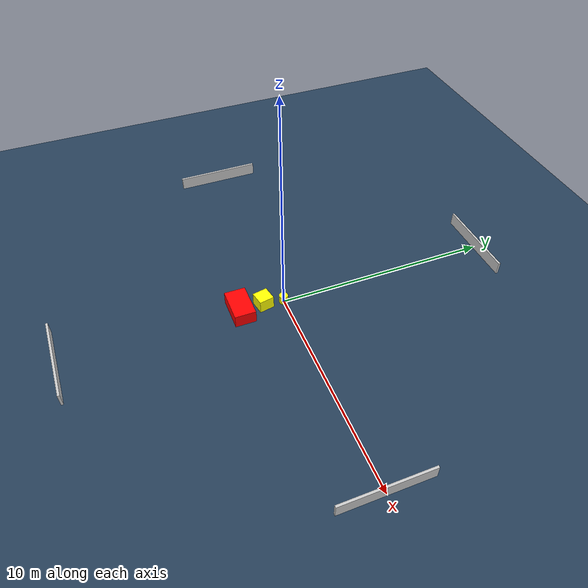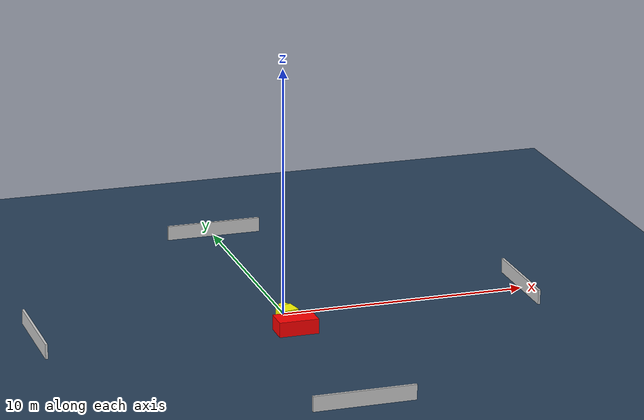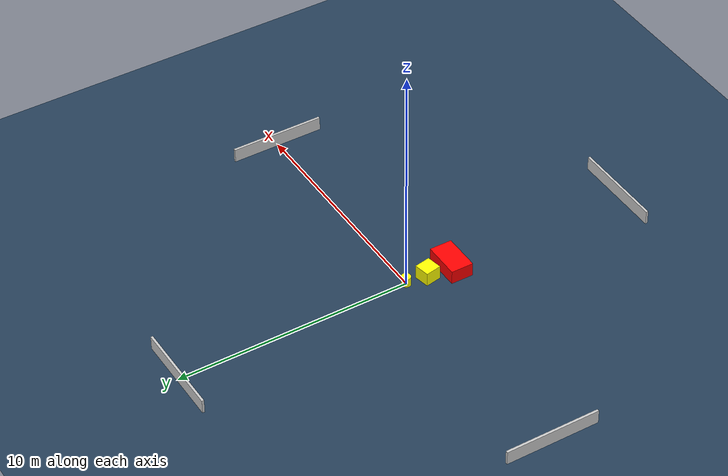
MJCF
<?xml version="1.0" ?>
<mujoco model="generated_environment">
  <option timestep="0.01" integrator="RK4" cone="elliptic"/>
  <default>
    <geom density="1"/>
  </default>
  <asset>
    <texture builtin="gradient" height="3072" name="skybox" rgb1="0.3 0.5 0.7" rgb2="0 0 0" type="skybox" width="512"/>
    <texture builtin="checker" height="300" name="groundplane" rgb1="0.2 0.3 0.4" rgb2="0.1 0.2 0.3" type="2d" width="300"/>
    <material name="groundplane" reflectance="0.2" texrepeat="5 5" texture="groundplane"/>
  </asset>
  <worldbody>
    <light dir="0 0 -1" directional="true" pos="0 0 1.5"/>
    <geom condim="3" friction="0.5 0.005 0.001" material="groundplane" name="floor" pos="0 0 0" size="0 0 0.05" type="plane"/>
    <body name="walls">
      <geom name="wall_1" condim="4" pos="-10.0 0.0 0.3" rgba="0.800000011920929 0.800000011920929 0.800000011920929 1.0" size="0.05 2.0 0.3" type="box"/>
      <geom name="wall_2" condim="4" pos="10.0 0.0 0.3" rgba="0.800000011920929 0.800000011920929 0.800000011920929 1.0" size="0.05 2.0 0.3" type="box"/>
      <geom name="wall_3" condim="4" pos="0.0 -10.0 0.3" rgba="0.800000011920929 0.800000011920929 0.800000011920929 1.0" size="2.0 0.05 0.3" type="box"/>
      <geom name="wall_4" condim="4" pos="0.0 10.0 0.3" rgba="0.800000011920929 0.800000011920929 0.800000011920929 1.0" size="2.0 0.05 0.3" type="box"/>
    </body>
    <body name="robot">
      <joint name="joint_x" type="slide" pos="0 0 0" axis="1 0 0"/>
      <joint name="joint_y" type="slide" pos="0 0 0" axis="0 1 0"/>
      <geom name="robot" type="cylinder" pos="0.0 0.0 0.2" size="0.2 0.2 0.0" mass="5.0" friction="1.0 0.005 0.0001" condim="4" rgba="1.0 1.0 0.0 1.0"/>
    </body>
    <body name="obstacle_1_movable">
      <geom name="obstacle_1_movable" condim="4" pos="-0.13093629483838773 -0.9091787768208855 0.3" euler="0 0 100.63131096725137" friction="0.0 0.005 0.001" rgba="1.0 1.0 0.0 1.0" size="0.3417122821866262 0.32948913237300814 0.3" type="box" mass="0.1"/>
      <joint type="free"/>
    </body>
    <body name="obstacle_2_static">
      <geom name="obstacle_2_static" condim="4" pos="-0.1250731645806578 -1.9929353041003601 0.3" euler="0 0 359.6646645542036" friction="0.0 0.005 0.001" rgba="1.0 0.0 0.0 1.0" size="0.7925179350436948 0.48003236134510335 0.3" type="box"/>
    </body>
  </worldbody>
  <actuator>
    <motor name="actuator_x" joint="joint_x" gear="1" ctrlrange="-1 1"/>
    <motor name="actuator_y" joint="joint_y" gear="1" ctrlrange="-1 1"/>
  </actuator>
</mujoco>
